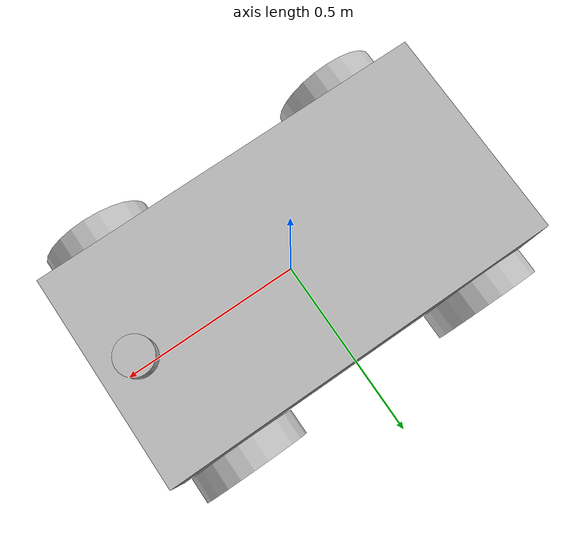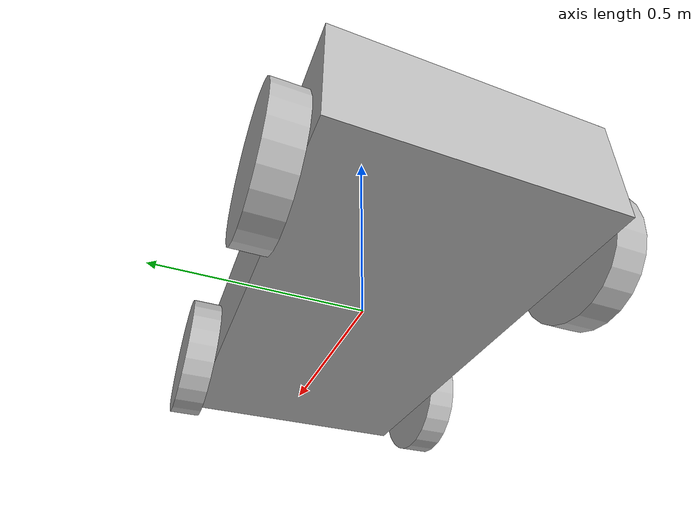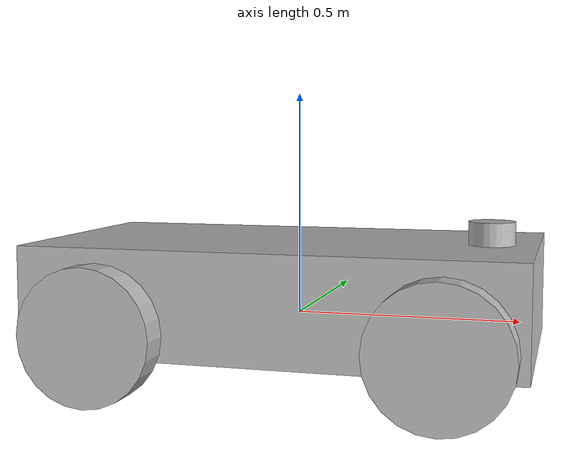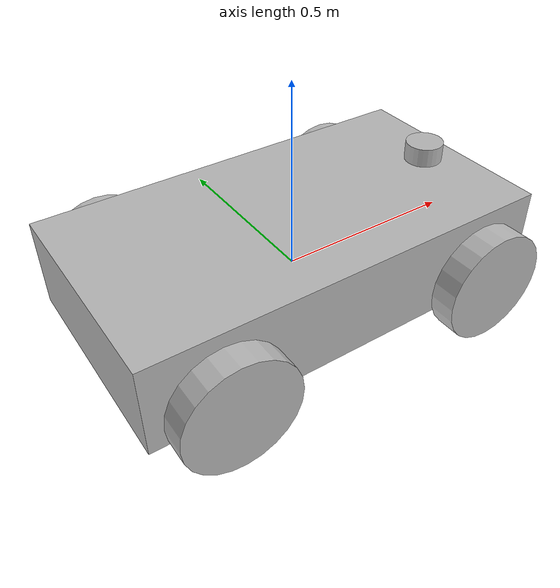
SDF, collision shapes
<?xml version='1.0'?>
<sdf version='1.7'>
  <model name='rover'>
    <link name='link_1'>
      <inertial>
        <mass>0.154507</mass>
        <inertia>
          <ixx>0.0052218</ixx>
          <ixy>0</ixy>
          <ixz>0</ixz>
          <iyy>0.0161751</iyy>
          <iyz>0</iyz>
          <izz>0.0199259</izz>
        </inertia>
        <pose>0 0 0 0 -0 0</pose>
      </inertial>
      <pose>-0.010539 0.001141 0.049189 0 -0 0</pose>
      <gravity>1</gravity>
      <self_collide>0</self_collide>
      <kinematic>0</kinematic>
      <enable_wind>0</enable_wind>
      <visual name='visual'>
        <pose>0 0 0 0 -0 0</pose>
        <geometry>
          <box>
            <size>1.09505 0.590283 0.239005</size>
          </box>
        </geometry>

        <transparency>0</transparency>
        <cast_shadows>1</cast_shadows>
      </visual>
      <collision name='collision'>
        <laser_retro>0</laser_retro>
        <max_contacts>10</max_contacts>
        <pose>0 0 0 0 -0 0</pose>
        <geometry>
          <box>
            <size>1.09505 0.590283 0.239005</size>
          </box>
        </geometry>
      </collision>
    </link>
    <link name='lidar'>
      <inertial>
        <pose>-0.052 0 0.111 0 -0 0</pose>
        <inertia>
          <ixx>0.001</ixx>
          <ixy>0</ixy>
          <ixz>0</ixz>
          <iyy>0.001</iyy>
          <iyz>0</iyz>
          <izz>0.001</izz>
        </inertia>
        <mass>0.125</mass>
      </inertial>
        <sensor type="ray" name="lds_lfcd_sensor">
        <always_on>1</always_on>
        <visualize>1</visualize>
        <pose>-0.064 0 0.121 0 -0 0</pose>
        <update_rate>1800</update_rate>
        <ray>
          <scan>
            <horizontal>
              <samples>360</samples>
              <resolution>1</resolution>
              <min_angle>0</min_angle>
              <max_angle>6.28</max_angle>
            </horizontal>
            <vertical>
              <samples>1</samples>
              <min_angle>0</min_angle>
              <max_angle>0</max_angle>
            </vertical>
          </scan>
          <range>
            <min>0.12</min>
            <max>3.5</max>
            <resolution>0.015</resolution>
          </range>
          <noise>
            <type>gaussian</type>
            <mean>0</mean>
            <stddev>0.01</stddev>
          </noise>
        </ray>

      </sensor>
      <self_collide>0</self_collide>
      <enable_wind>0</enable_wind>
      <kinematic>0</kinematic>
      <pose>0.487555 0 0.081767 0 -0 0</pose>
      <gravity>1</gravity>
      <visual name='lidar_sensor_visual'>
        <pose>-0.064 0 0.121 0 -0 0</pose>
        <geometry>
          <mesh>
            <uri>model://turtlebot3_common_meshes/lds.dae</uri>
            <scale>0.001 0.001 0.001</scale>
          </mesh>
        </geometry>
        <material>
          <shader type='pixel'>
            <normal_map>__default__</normal_map>
          </shader>
          <emissive>0 0 0 1</emissive>
        </material>
        <transparency>0</transparency>
        <cast_shadows>1</cast_shadows>
      </visual>
      <collision name='lidar_sensor_collision'>
        <laser_retro>0</laser_retro>
        <max_contacts>10</max_contacts>
        <pose>-0.052 0 0.111 0 -0 0</pose>
        <geometry>
          <cylinder>
            <radius>0.0508</radius>
            <length>0.055</length>
          </cylinder>
        </geometry>
      </collision>
    </link>
    <link name='link_2'>
      <inertial>
        <mass>0.00629423</mass>
        <inertia>
          <ixx>3.792e-05</ixx>
          <ixy>0</ixy>
          <ixz>0</ixz>
          <iyy>3.792e-05</iyy>
          <iyz>0</iyz>
          <izz>7.071e-05</izz>
        </inertia>
        <pose>0 0 0 0 -0 0</pose>
      </inertial>
      <pose>-0.369493 0.333873 -0.012297 -1.5708 -0 -0</pose>
      <gravity>1</gravity>
      <self_collide>0</self_collide>
      <kinematic>0</kinematic>
      <enable_wind>0</enable_wind>
      <visual name='visual'>
        <pose>0 0 0 0 -0 0</pose>
        <geometry>
          <cylinder>
            <radius>0.149892</radius>
            <length>0.070004</length>
          </cylinder>
        </geometry>

        <transparency>0</transparency>
        <cast_shadows>1</cast_shadows>
      </visual>
      <collision name='collision'>
        <laser_retro>0</laser_retro>
        <max_contacts>10</max_contacts>
        <pose>0 0 0 0 -0 0</pose>
        <geometry>
          <cylinder>
            <radius>0.149892</radius>
            <length>0.070004</length>
          </cylinder>
        </geometry>
      </collision>
    </link>
    <link name='link_2_clone'>
      <inertial>
        <mass>0.00629423</mass>
        <inertia>
          <ixx>3.792e-05</ixx>
          <ixy>0</ixy>
          <ixz>0</ixz>
          <iyy>3.792e-05</iyy>
          <iyz>0</iyz>
          <izz>7.071e-05</izz>
        </inertia>
        <pose>0 0 0 0 -0 0</pose>
      </inertial>
      <pose>0.356178 0.335227 -0.012297 -1.5708 -0 -0</pose>
      <gravity>1</gravity>
      <self_collide>0</self_collide>
      <kinematic>0</kinematic>
      <enable_wind>0</enable_wind>
      <visual name='visual'>
        <pose>0 0 0 0 -0 0</pose>
        <geometry>
          <cylinder>
            <radius>0.149892</radius>
            <length>0.070004</length>
          </cylinder>
        </geometry>

        <transparency>0</transparency>
        <cast_shadows>1</cast_shadows>
      </visual>
      <collision name='collision'>
        <laser_retro>0</laser_retro>
        <max_contacts>10</max_contacts>
        <pose>0 0 0 0 -0 0</pose>
        <geometry>
          <cylinder>
            <radius>0.149892</radius>
            <length>0.070004</length>
          </cylinder>
        </geometry>
      </collision>
    </link>
    <link name='link_2_clone_0'>
      <inertial>
        <mass>0.00629423</mass>
        <inertia>
          <ixx>3.792e-05</ixx>
          <ixy>0</ixy>
          <ixz>0</ixz>
          <iyy>3.792e-05</iyy>
          <iyz>0</iyz>
          <izz>7.071e-05</izz>
        </inertia>
        <pose>0 0 0 0 -0 0</pose>
      </inertial>
      <pose>0.368513 -0.33441 -0.012297 -1.57079 -0 -3.14159</pose>
      <gravity>1</gravity>
      <self_collide>0</self_collide>
      <kinematic>0</kinematic>
      <enable_wind>0</enable_wind>
      <visual name='visual'>
        <pose>0 0 0 0 -0 0</pose>
        <geometry>
          <cylinder>
            <radius>0.149892</radius>
            <length>0.070004</length>
          </cylinder>
        </geometry>

        <transparency>0</transparency>
        <cast_shadows>1</cast_shadows>
      </visual>
      <collision name='collision'>
        <laser_retro>0</laser_retro>
        <max_contacts>10</max_contacts>
        <pose>0 0 0 0 -0 0</pose>
        <geometry>
          <cylinder>
            <radius>0.149892</radius>
            <length>0.070004</length>
          </cylinder>
        </geometry>
      </collision>
    </link>
    <link name='link_2_clone_0_clone'>
      <inertial>
        <mass>0.00629423</mass>
        <inertia>
          <ixx>3.792e-05</ixx>
          <ixy>0</ixy>
          <ixz>0</ixz>
          <iyy>3.792e-05</iyy>
          <iyz>0</iyz>
          <izz>7.071e-05</izz>
        </inertia>
        <pose>0 0 0 0 -0 0</pose>
      </inertial>
      <pose>-0.369285 -0.334378 -0.012297 -1.57079 -0 -3.14159</pose>
      <gravity>1</gravity>
      <self_collide>0</self_collide>
      <kinematic>0</kinematic>
      <enable_wind>0</enable_wind>
      <visual name='visual'>
        <pose>0 0 0 0 -0 0</pose>
        <geometry>
          <cylinder>
            <radius>0.149892</radius>
            <length>0.070004</length>
          </cylinder>
        </geometry>

        <transparency>0</transparency>
        <cast_shadows>1</cast_shadows>
      </visual>
      <collision name='collision'>
        <laser_retro>0</laser_retro>
        <max_contacts>10</max_contacts>
        <pose>0 0 0 0 -0 0</pose>
        <geometry>
          <cylinder>
            <radius>0.149892</radius>
            <length>0.070004</length>
          </cylinder>
        </geometry>
      </collision>
    </link>
    <joint name='link_1_JOINT_0_0' type='fixed'>
      <parent>link_1</parent>
      <child>lidar</child>
      <pose>0 0 0 0 -0 0</pose>
      <physics>
        <ode>
          <limit>
            <cfm>0</cfm>
            <erp>0.2</erp>
          </limit>
          <suspension>
            <cfm>0</cfm>
            <erp>0.2</erp>
          </suspension>
        </ode>
      </physics>
    </joint>
    <joint name='link_1_JOINT_0' type='revolute'>
      <parent>link_1</parent>
      <child>link_2_clone_0_clone</child>
      <pose>0 0 0 0 -0 0</pose>
      <axis>
        <xyz>0 0 1</xyz>
        <limit>
          <lower>-1.79769e+308</lower>
          <upper>1.79769e+308</upper>
          <effort>-1</effort>
          <velocity>-1</velocity>
        </limit>
        <dynamics>
          <spring_reference>0</spring_reference>
          <spring_stiffness>0</spring_stiffness>
          <damping>0</damping>
          <friction>0</friction>
        </dynamics>
      </axis>
      <physics>
        <ode>
          <limit>
            <cfm>0</cfm>
            <erp>0.2</erp>
          </limit>
          <suspension>
            <cfm>0</cfm>
            <erp>0.2</erp>
          </suspension>
        </ode>
      </physics>
    </joint>
    <joint name='link_1_JOINT_1' type='revolute'>
      <parent>link_1</parent>
      <child>link_2</child>
      <pose>0 0 0 0 -0 0</pose>
      <axis>
        <xyz>0 0 1</xyz>
        <limit>
          <lower>-1.79769e+308</lower>
          <upper>1.79769e+308</upper>
          <effort>-1</effort>
          <velocity>-1</velocity>
        </limit>
        <dynamics>
          <spring_reference>0</spring_reference>
          <spring_stiffness>0</spring_stiffness>
          <damping>0</damping>
          <friction>0</friction>
        </dynamics>
      </axis>
      <physics>
        <ode>
          <limit>
            <cfm>0</cfm>
            <erp>0.2</erp>
          </limit>
          <suspension>
            <cfm>0</cfm>
            <erp>0.2</erp>
          </suspension>
        </ode>
      </physics>
    </joint>
    <joint name='link_1_JOINT_2' type='revolute'>
      <parent>link_1</parent>
      <child>link_2_clone</child>
      <pose>0 0 0 0 -0 0</pose>
      <axis>
        <xyz>0 0 1</xyz>
        <limit>
          <lower>-1.79769e+308</lower>
          <upper>1.79769e+308</upper>
          <effort>-1</effort>
          <velocity>-1</velocity>
        </limit>
        <dynamics>
          <spring_reference>0</spring_reference>
          <spring_stiffness>0</spring_stiffness>
          <damping>0</damping>
          <friction>0</friction>
        </dynamics>
      </axis>
      <physics>
        <ode>
          <limit>
            <cfm>0</cfm>
            <erp>0.2</erp>
          </limit>
          <suspension>
            <cfm>0</cfm>
            <erp>0.2</erp>
          </suspension>
        </ode>
      </physics>
    </joint>
    <joint name='link_1_JOINT_3' type='revolute'>
      <parent>link_1</parent>
      <child>link_2_clone_0</child>
      <pose>0 0 0 0 -0 0</pose>
      <axis>
        <xyz>0 0 1</xyz>
        <limit>
          <lower>-1.79769e+308</lower>
          <upper>1.79769e+308</upper>
          <effort>-1</effort>
          <velocity>-1</velocity>
        </limit>
        <dynamics>
          <spring_reference>0</spring_reference>
          <spring_stiffness>0</spring_stiffness>
          <damping>0</damping>
          <friction>0</friction>
        </dynamics>
      </axis>
      <physics>
        <ode>
          <limit>
            <cfm>0</cfm>
            <erp>0.2</erp>
          </limit>
          <suspension>
            <cfm>0</cfm>
            <erp>0.2</erp>
          </suspension>
        </ode>
      </physics>
    </joint>
    <static>0</static>
    <allow_auto_disable>1</allow_auto_disable>
  </model>
</sdf>
